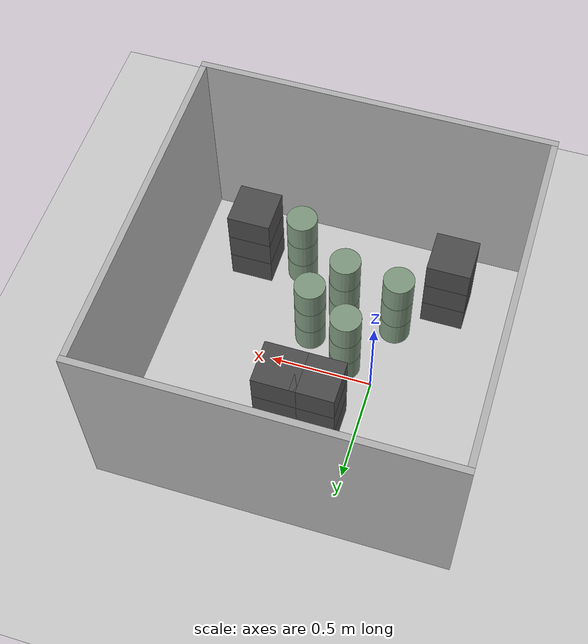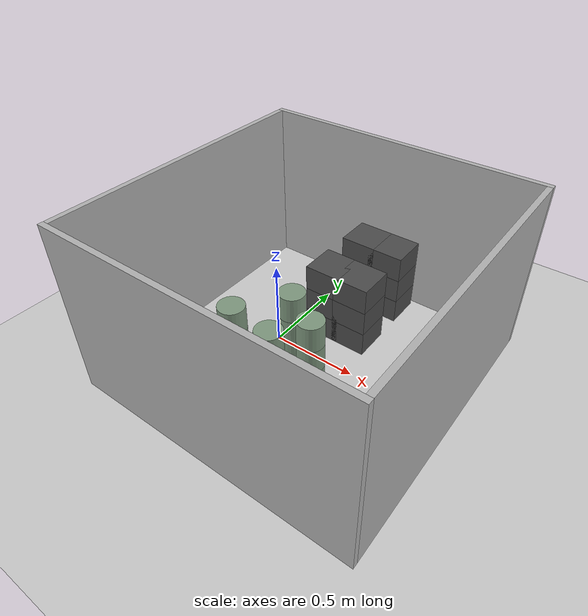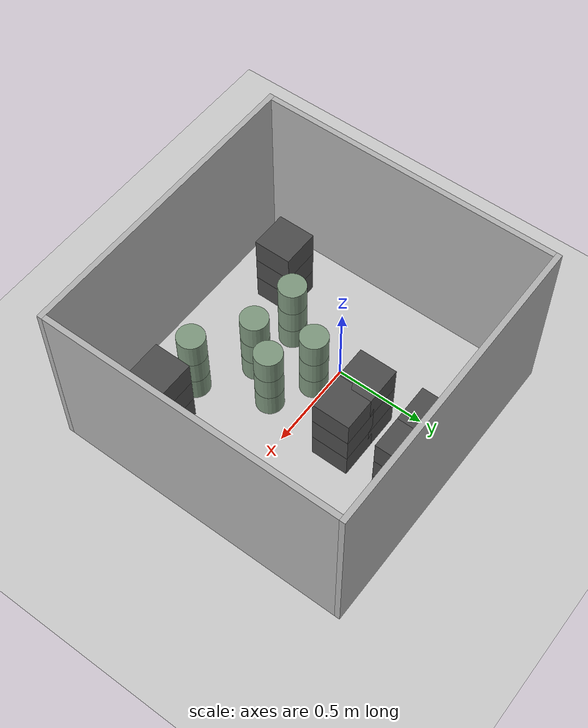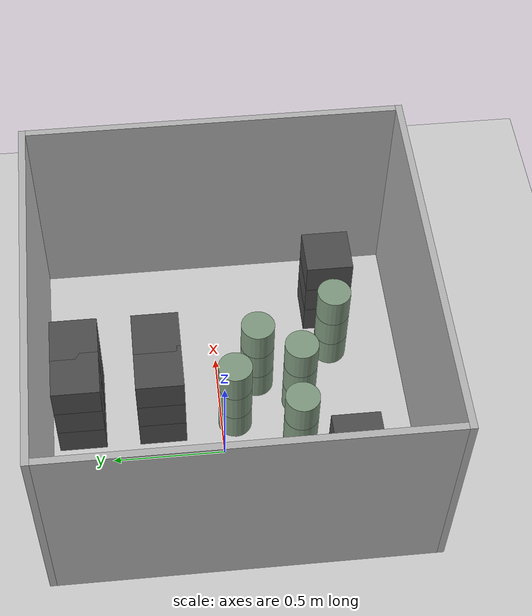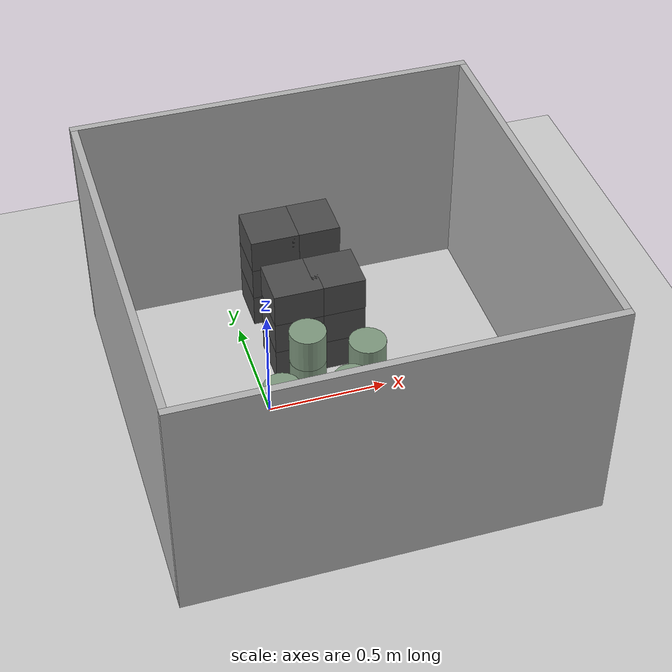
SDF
<sdf version="1.6">
 <world name="default">
  <plugin name="gazebo_occupancy_map" filename="libgazebo_2Dmap_plugin.so">
   <map_resolution>0.02</map_resolution>
   <map_height>0.3</map_height>
   <map_size_x>9</map_size_x>
   <map_size_y>9</map_size_y>
   <init_robot_x>0</init_robot_x>
   <init_robot_y>0</init_robot_y>
  </plugin>
  <light name="sun" type="directional">
   <cast_shadows>0</cast_shadows>
   <pose>0 0 10 0 -0 0</pose>
   <diffuse>0.8 0.8 0.8 1</diffuse>
   <specular>0.2 0.2 0.2 1</specular>
   <attenuation>
    <range>1000</range>
    <constant>0.9</constant>
    <linear>0.01</linear>
    <quadratic>0.001</quadratic>
   </attenuation>
   <direction>-0.5 0.1 -0.9</direction>
  </light>
  <include><uri>model://ground_plane</uri></include>
  <gravity>0 0 -9.8</gravity>
  <magnetic_field>6e-06 2.3e-05 -4.2e-05</magnetic_field>
  <atmosphere type="adiabatic"/>
  <physics name="default_physics" default="0" type="ode">
   <max_step_size>0.001</max_step_size>
   <real_time_factor>1</real_time_factor>
   <real_time_update_rate>1000</real_time_update_rate>
  </physics>
  <scene><ambient>0.4 0.4 0.4 1</ambient><background>0.7 0.7 0.7 1</background><shadows>0</shadows></scene>
  <spherical_coordinates>
   <surface_model>EARTH_WGS84</surface_model>
   <latitude_deg>0</latitude_deg>
   <longitude_deg>0</longitude_deg>
   <elevation>0</elevation>
   <heading_deg>0</heading_deg>
  </spherical_coordinates>
  <model name="wall_0">
   <pose frame="sim_world">-0.57 -0.045 0.5 0 0 0</pose>
   <static>True</static>
   <link name="wall_0_link">
    <inertial>
     <mass>100</mass>
     <inertia>
      <ixx>0.166667</ixx>
      <ixy>0</ixy>
      <ixz>0</ixz>
      <iyy>0.166667</iyy>
      <iyz>0</iyz>
      <izz>0.166667</izz>
     </inertia>
    </inertial>
    <collision name="wall_0_collision">
     <geometry><box><size>0.03 1.6199999999999999 1.0</size></box></geometry>
     <max_contacts>100</max_contacts>
    </collision>
    <visual name="wall_0_visual">
     <geometry><box><size>0.03 1.6199999999999999 1.0</size></box></geometry>
     <material><ambient>0.7 0.7 0.7 1</ambient><diffuse>0.7 0.7 0.7 1</diffuse></material>
    </visual>
   </link>
  </model>
  <model name="wall_1">
   <pose frame="sim_world">1.08 -0.045 0.5 0 0 0</pose>
   <static>True</static>
   <link name="wall_1_link">
    <inertial>
     <mass>100</mass>
     <inertia>
      <ixx>0.166667</ixx>
      <ixy>0</ixy>
      <ixz>0</ixz>
      <iyy>0.166667</iyy>
      <iyz>0</iyz>
      <izz>0.166667</izz>
     </inertia>
    </inertial>
    <collision name="wall_1_collision">
     <geometry><box><size>0.03 1.6199999999999999 1.0</size></box></geometry>
     <max_contacts>100</max_contacts>
    </collision>
    <visual name="wall_1_visual">
     <geometry><box><size>0.03 1.6199999999999999 1.0</size></box></geometry>
     <material><ambient>0.7 0.7 0.7 1</ambient><diffuse>0.7 0.7 0.7 1</diffuse></material>
    </visual>
   </link>
  </model>
  <model name="wall_2">
   <pose frame="sim_world">0.255 -0.87 0.5 0 0 0</pose>
   <static>True</static>
   <link name="wall_2_link">
    <inertial>
     <mass>100</mass>
     <inertia>
      <ixx>0.166667</ixx>
      <ixy>0</ixy>
      <ixz>0</ixz>
      <iyy>0.166667</iyy>
      <iyz>0</iyz>
      <izz>0.166667</izz>
     </inertia>
    </inertial>
    <collision name="wall_2_collision">
     <geometry><box><size>1.68 0.03 1.0</size></box></geometry>
     <max_contacts>100</max_contacts>
    </collision>
    <visual name="wall_2_visual">
     <geometry><box><size>1.68 0.03 1.0</size></box></geometry>
     <material><ambient>0.7 0.7 0.7 1</ambient><diffuse>0.7 0.7 0.7 1</diffuse></material>
    </visual>
   </link>
  </model>
  <model name="wall_3">
   <pose frame="sim_world">0.255 0.78 0.5 0 0 0</pose>
   <static>True</static>
   <link name="wall_3_link">
    <inertial>
     <mass>100</mass>
     <inertia>
      <ixx>0.166667</ixx>
      <ixy>0</ixy>
      <ixz>0</ixz>
      <iyy>0.166667</iyy>
      <iyz>0</iyz>
      <izz>0.166667</izz>
     </inertia>
    </inertial>
    <collision name="wall_3_collision">
     <geometry><box><size>1.68 0.03 1.0</size></box></geometry>
     <max_contacts>100</max_contacts>
    </collision>
    <visual name="wall_3_visual">
     <geometry><box><size>1.68 0.03 1.0</size></box></geometry>
     <material><ambient>0.7 0.7 0.7 1</ambient><diffuse>0.7 0.7 0.7 1</diffuse></material>
    </visual>
   </link>
  </model>
  <model name="box_0">
   <pose frame="sim_world">-0.24 -0.54 0.075 0 -0 0</pose>
   <static>True</static>
   <link name="box_0_link">
    <inertial>
     <mass>100</mass>
     <inertia>
      <ixx>0.166667</ixx>
      <ixy>0</ixy>
      <ixz>0</ixz>
      <iyy>0.166667</iyy>
      <iyz>0</iyz>
      <izz>0.166667</izz>
     </inertia>
    </inertial>
    <collision name="box_0_collision">
     <geometry><box><size>0.21 0.21 0.15</size></box></geometry>
     <max_contacts>100</max_contacts>
    </collision>
    <visual name="box_0_visual">
     <geometry><box><size>0.21 0.21 0.15</size></box></geometry>
     <material><ambient>0.3 0.3 0.3 1</ambient><diffuse>0.3 0.3 0.3 1</diffuse></material>
    </visual>
   </link>
  </model>
  <model name="box_1">
   <pose frame="sim_world">-0.24 -0.54 0.225 0 -0 0</pose>
   <static>True</static>
   <link name="box_1_link">
    <inertial>
     <mass>100</mass>
     <inertia>
      <ixx>0.166667</ixx>
      <ixy>0</ixy>
      <ixz>0</ixz>
      <iyy>0.166667</iyy>
      <iyz>0</iyz>
      <izz>0.166667</izz>
     </inertia>
    </inertial>
    <collision name="box_1_collision">
     <geometry><box><size>0.21 0.21 0.15</size></box></geometry>
     <max_contacts>100</max_contacts>
    </collision>
    <visual name="box_1_visual">
     <geometry><box><size>0.21 0.21 0.15</size></box></geometry>
     <material><ambient>0.3 0.3 0.3 1</ambient><diffuse>0.3 0.3 0.3 1</diffuse></material>
    </visual>
   </link>
  </model>
  <model name="box_2">
   <pose frame="sim_world">-0.24 -0.54 0.375 0 -0 0</pose>
   <static>True</static>
   <link name="box_2_link">
    <inertial>
     <mass>100</mass>
     <inertia>
      <ixx>0.166667</ixx>
      <ixy>0</ixy>
      <ixz>0</ixz>
      <iyy>0.166667</iyy>
      <iyz>0</iyz>
      <izz>0.166667</izz>
     </inertia>
    </inertial>
    <collision name="box_2_collision">
     <geometry><box><size>0.21 0.21 0.15</size></box></geometry>
     <max_contacts>100</max_contacts>
    </collision>
    <visual name="box_2_visual">
     <geometry><box><size>0.21 0.21 0.15</size></box></geometry>
     <material><ambient>0.3 0.3 0.3 1</ambient><diffuse>0.3 0.3 0.3 1</diffuse></material>
    </visual>
   </link>
  </model>
  <model name="box_3">
   <pose frame="sim_world">0.18 0.27 0.075 0 -0 0</pose>
   <static>True</static>
   <link name="box_3_link">
    <inertial>
     <mass>100</mass>
     <inertia>
      <ixx>0.166667</ixx>
      <ixy>0</ixy>
      <ixz>0</ixz>
      <iyy>0.166667</iyy>
      <iyz>0</iyz>
      <izz>0.166667</izz>
     </inertia>
    </inertial>
    <collision name="box_3_collision">
     <geometry><box><size>0.21 0.21 0.15</size></box></geometry>
     <max_contacts>100</max_contacts>
    </collision>
    <visual name="box_3_visual">
     <geometry><box><size>0.21 0.21 0.15</size></box></geometry>
     <material><ambient>0.3 0.3 0.3 1</ambient><diffuse>0.3 0.3 0.3 1</diffuse></material>
    </visual>
   </link>
  </model>
  <model name="box_4">
   <pose frame="sim_world">0.18 0.27 0.225 0 -0 0</pose>
   <static>True</static>
   <link name="box_4_link">
    <inertial>
     <mass>100</mass>
     <inertia>
      <ixx>0.166667</ixx>
      <ixy>0</ixy>
      <ixz>0</ixz>
      <iyy>0.166667</iyy>
      <iyz>0</iyz>
      <izz>0.166667</izz>
     </inertia>
    </inertial>
    <collision name="box_4_collision">
     <geometry><box><size>0.21 0.21 0.15</size></box></geometry>
     <max_contacts>100</max_contacts>
    </collision>
    <visual name="box_4_visual">
     <geometry><box><size>0.21 0.21 0.15</size></box></geometry>
     <material><ambient>0.3 0.3 0.3 1</ambient><diffuse>0.3 0.3 0.3 1</diffuse></material>
    </visual>
   </link>
  </model>
  <model name="box_5">
   <pose frame="sim_world">0.18 0.27 0.375 0 -0 0</pose>
   <static>True</static>
   <link name="box_5_link">
    <inertial>
     <mass>100</mass>
     <inertia>
      <ixx>0.166667</ixx>
      <ixy>0</ixy>
      <ixz>0</ixz>
      <iyy>0.166667</iyy>
      <iyz>0</iyz>
      <izz>0.166667</izz>
     </inertia>
    </inertial>
    <collision name="box_5_collision">
     <geometry><box><size>0.21 0.21 0.15</size></box></geometry>
     <max_contacts>100</max_contacts>
    </collision>
    <visual name="box_5_visual">
     <geometry><box><size>0.21 0.21 0.15</size></box></geometry>
     <material><ambient>0.3 0.3 0.3 1</ambient><diffuse>0.3 0.3 0.3 1</diffuse></material>
    </visual>
   </link>
  </model>
  <model name="box_6">
   <pose frame="sim_world">0.18 0.63 0.075 0 -0 0</pose>
   <static>True</static>
   <link name="box_6_link">
    <inertial>
     <mass>100</mass>
     <inertia>
      <ixx>0.166667</ixx>
      <ixy>0</ixy>
      <ixz>0</ixz>
      <iyy>0.166667</iyy>
      <iyz>0</iyz>
      <izz>0.166667</izz>
     </inertia>
    </inertial>
    <collision name="box_6_collision">
     <geometry><box><size>0.21 0.21 0.15</size></box></geometry>
     <max_contacts>100</max_contacts>
    </collision>
    <visual name="box_6_visual">
     <geometry><box><size>0.21 0.21 0.15</size></box></geometry>
     <material><ambient>0.3 0.3 0.3 1</ambient><diffuse>0.3 0.3 0.3 1</diffuse></material>
    </visual>
   </link>
  </model>
  <model name="box_7">
   <pose frame="sim_world">0.18 0.63 0.225 0 -0 0</pose>
   <static>True</static>
   <link name="box_7_link">
    <inertial>
     <mass>100</mass>
     <inertia>
      <ixx>0.166667</ixx>
      <ixy>0</ixy>
      <ixz>0</ixz>
      <iyy>0.166667</iyy>
      <iyz>0</iyz>
      <izz>0.166667</izz>
     </inertia>
    </inertial>
    <collision name="box_7_collision">
     <geometry><box><size>0.21 0.21 0.15</size></box></geometry>
     <max_contacts>100</max_contacts>
    </collision>
    <visual name="box_7_visual">
     <geometry><box><size>0.21 0.21 0.15</size></box></geometry>
     <material><ambient>0.3 0.3 0.3 1</ambient><diffuse>0.3 0.3 0.3 1</diffuse></material>
    </visual>
   </link>
  </model>
  <model name="box_8">
   <pose frame="sim_world">0.18 0.63 0.375 0 -0 0</pose>
   <static>True</static>
   <link name="box_8_link">
    <inertial>
     <mass>100</mass>
     <inertia>
      <ixx>0.166667</ixx>
      <ixy>0</ixy>
      <ixz>0</ixz>
      <iyy>0.166667</iyy>
      <iyz>0</iyz>
      <izz>0.166667</izz>
     </inertia>
    </inertial>
    <collision name="box_8_collision">
     <geometry><box><size>0.21 0.21 0.15</size></box></geometry>
     <max_contacts>100</max_contacts>
    </collision>
    <visual name="box_8_visual">
     <geometry><box><size>0.21 0.21 0.15</size></box></geometry>
     <material><ambient>0.3 0.3 0.3 1</ambient><diffuse>0.3 0.3 0.3 1</diffuse></material>
    </visual>
   </link>
  </model>
  <model name="box_9">
   <pose frame="sim_world">0.36 0.27 0.075 0 -0 0</pose>
   <static>True</static>
   <link name="box_9_link">
    <inertial>
     <mass>100</mass>
     <inertia>
      <ixx>0.166667</ixx>
      <ixy>0</ixy>
      <ixz>0</ixz>
      <iyy>0.166667</iyy>
      <iyz>0</iyz>
      <izz>0.166667</izz>
     </inertia>
    </inertial>
    <collision name="box_9_collision">
     <geometry><box><size>0.21 0.21 0.15</size></box></geometry>
     <max_contacts>100</max_contacts>
    </collision>
    <visual name="box_9_visual">
     <geometry><box><size>0.21 0.21 0.15</size></box></geometry>
     <material><ambient>0.3 0.3 0.3 1</ambient><diffuse>0.3 0.3 0.3 1</diffuse></material>
    </visual>
   </link>
  </model>
  <model name="box_10">
   <pose frame="sim_world">0.36 0.27 0.225 0 -0 0</pose>
   <static>True</static>
   <link name="box_10_link">
    <inertial>
     <mass>100</mass>
     <inertia>
      <ixx>0.166667</ixx>
      <ixy>0</ixy>
      <ixz>0</ixz>
      <iyy>0.166667</iyy>
      <iyz>0</iyz>
      <izz>0.166667</izz>
     </inertia>
    </inertial>
    <collision name="box_10_collision">
     <geometry><box><size>0.21 0.21 0.15</size></box></geometry>
     <max_contacts>100</max_contacts>
    </collision>
    <visual name="box_10_visual">
     <geometry><box><size>0.21 0.21 0.15</size></box></geometry>
     <material><ambient>0.3 0.3 0.3 1</ambient><diffuse>0.3 0.3 0.3 1</diffuse></material>
    </visual>
   </link>
  </model>
  <model name="box_11">
   <pose frame="sim_world">0.36 0.27 0.375 0 -0 0</pose>
   <static>True</static>
   <link name="box_11_link">
    <inertial>
     <mass>100</mass>
     <inertia>
      <ixx>0.166667</ixx>
      <ixy>0</ixy>
      <ixz>0</ixz>
      <iyy>0.166667</iyy>
      <iyz>0</iyz>
      <izz>0.166667</izz>
     </inertia>
    </inertial>
    <collision name="box_11_collision">
     <geometry><box><size>0.21 0.21 0.15</size></box></geometry>
     <max_contacts>100</max_contacts>
    </collision>
    <visual name="box_11_visual">
     <geometry><box><size>0.21 0.21 0.15</size></box></geometry>
     <material><ambient>0.3 0.3 0.3 1</ambient><diffuse>0.3 0.3 0.3 1</diffuse></material>
    </visual>
   </link>
  </model>
  <model name="box_12">
   <pose frame="sim_world">0.36 0.63 0.075 0 -0 0</pose>
   <static>True</static>
   <link name="box_12_link">
    <inertial>
     <mass>100</mass>
     <inertia>
      <ixx>0.166667</ixx>
      <ixy>0</ixy>
      <ixz>0</ixz>
      <iyy>0.166667</iyy>
      <iyz>0</iyz>
      <izz>0.166667</izz>
     </inertia>
    </inertial>
    <collision name="box_12_collision">
     <geometry><box><size>0.21 0.21 0.15</size></box></geometry>
     <max_contacts>100</max_contacts>
    </collision>
    <visual name="box_12_visual">
     <geometry><box><size>0.21 0.21 0.15</size></box></geometry>
     <material><ambient>0.3 0.3 0.3 1</ambient><diffuse>0.3 0.3 0.3 1</diffuse></material>
    </visual>
   </link>
  </model>
  <model name="box_13">
   <pose frame="sim_world">0.36 0.63 0.225 0 -0 0</pose>
   <static>True</static>
   <link name="box_13_link">
    <inertial>
     <mass>100</mass>
     <inertia>
      <ixx>0.166667</ixx>
      <ixy>0</ixy>
      <ixz>0</ixz>
      <iyy>0.166667</iyy>
      <iyz>0</iyz>
      <izz>0.166667</izz>
     </inertia>
    </inertial>
    <collision name="box_13_collision">
     <geometry><box><size>0.21 0.21 0.15</size></box></geometry>
     <max_contacts>100</max_contacts>
    </collision>
    <visual name="box_13_visual">
     <geometry><box><size>0.21 0.21 0.15</size></box></geometry>
     <material><ambient>0.3 0.3 0.3 1</ambient><diffuse>0.3 0.3 0.3 1</diffuse></material>
    </visual>
   </link>
  </model>
  <model name="box_14">
   <pose frame="sim_world">0.36 0.63 0.375 0 -0 0</pose>
   <static>True</static>
   <link name="box_14_link">
    <inertial>
     <mass>100</mass>
     <inertia>
      <ixx>0.166667</ixx>
      <ixy>0</ixy>
      <ixz>0</ixz>
      <iyy>0.166667</iyy>
      <iyz>0</iyz>
      <izz>0.166667</izz>
     </inertia>
    </inertial>
    <collision name="box_14_collision">
     <geometry><box><size>0.21 0.21 0.15</size></box></geometry>
     <max_contacts>100</max_contacts>
    </collision>
    <visual name="box_14_visual">
     <geometry><box><size>0.21 0.21 0.15</size></box></geometry>
     <material><ambient>0.3 0.3 0.3 1</ambient><diffuse>0.3 0.3 0.3 1</diffuse></material>
    </visual>
   </link>
  </model>
  <model name="box_15">
   <pose frame="sim_world">0.75 -0.54 0.075 0 -0 0</pose>
   <static>True</static>
   <link name="box_15_link">
    <inertial>
     <mass>100</mass>
     <inertia>
      <ixx>0.166667</ixx>
      <ixy>0</ixy>
      <ixz>0</ixz>
      <iyy>0.166667</iyy>
      <iyz>0</iyz>
      <izz>0.166667</izz>
     </inertia>
    </inertial>
    <collision name="box_15_collision">
     <geometry><box><size>0.21 0.21 0.15</size></box></geometry>
     <max_contacts>100</max_contacts>
    </collision>
    <visual name="box_15_visual">
     <geometry><box><size>0.21 0.21 0.15</size></box></geometry>
     <material><ambient>0.3 0.3 0.3 1</ambient><diffuse>0.3 0.3 0.3 1</diffuse></material>
    </visual>
   </link>
  </model>
  <model name="box_16">
   <pose frame="sim_world">0.75 -0.54 0.225 0 -0 0</pose>
   <static>True</static>
   <link name="box_16_link">
    <inertial>
     <mass>100</mass>
     <inertia>
      <ixx>0.166667</ixx>
      <ixy>0</ixy>
      <ixz>0</ixz>
      <iyy>0.166667</iyy>
      <iyz>0</iyz>
      <izz>0.166667</izz>
     </inertia>
    </inertial>
    <collision name="box_16_collision">
     <geometry><box><size>0.21 0.21 0.15</size></box></geometry>
     <max_contacts>100</max_contacts>
    </collision>
    <visual name="box_16_visual">
     <geometry><box><size>0.21 0.21 0.15</size></box></geometry>
     <material><ambient>0.3 0.3 0.3 1</ambient><diffuse>0.3 0.3 0.3 1</diffuse></material>
    </visual>
   </link>
  </model>
  <model name="box_17">
   <pose frame="sim_world">0.75 -0.54 0.375 0 -0 0</pose>
   <static>True</static>
   <link name="box_17_link">
    <inertial>
     <mass>100</mass>
     <inertia>
      <ixx>0.166667</ixx>
      <ixy>0</ixy>
      <ixz>0</ixz>
      <iyy>0.166667</iyy>
      <iyz>0</iyz>
      <izz>0.166667</izz>
     </inertia>
    </inertial>
    <collision name="box_17_collision">
     <geometry><box><size>0.21 0.21 0.15</size></box></geometry>
     <max_contacts>100</max_contacts>
    </collision>
    <visual name="box_17_visual">
     <geometry><box><size>0.21 0.21 0.15</size></box></geometry>
     <material><ambient>0.3 0.3 0.3 1</ambient><diffuse>0.3 0.3 0.3 1</diffuse></material>
    </visual>
   </link>
  </model>
  <model name="cylinder_0">
   <pose frame="sim_world">-0.03 -0.33 0.075 0 -0 0</pose>
   <static>True</static>
   <link name="cylinder_0_link">
    <inertial>
     <mass>100</mass>
     <inertia><ixx>0.145833</ixx><ixy>0</ixy><ixz>0</ixz><iyy>0.145833</iyy><iyz>0</iyz><izz>0.125</izz></inertia>
    </inertial>
    <collision name="cylinder_0_collision">
     <geometry><cylinder><length>0.15</length><radius>0.075</radius></cylinder></geometry>
     <max_contacts>100</max_contacts>
    </collision>
    <visual name="cylinder_0_visual">
     <geometry><cylinder><length>0.15</length><radius>0.075</radius></cylinder></geometry>
     <material><ambient>0.5 0.6 0.5 1</ambient><diffuse>0.5 0.6 0.5 1</diffuse></material>
    </visual>
   </link>
  </model>
  <model name="cylinder_1">
   <pose frame="sim_world">-0.03 -0.33 0.225 0 -0 0</pose>
   <static>True</static>
   <link name="cylinder_1_link">
    <inertial>
     <mass>100</mass>
     <inertia><ixx>0.145833</ixx><ixy>0</ixy><ixz>0</ixz><iyy>0.145833</iyy><iyz>0</iyz><izz>0.125</izz></inertia>
    </inertial>
    <collision name="cylinder_1_collision">
     <geometry><cylinder><length>0.15</length><radius>0.075</radius></cylinder></geometry>
     <max_contacts>100</max_contacts>
    </collision>
    <visual name="cylinder_1_visual">
     <geometry><cylinder><length>0.15</length><radius>0.075</radius></cylinder></geometry>
     <material><ambient>0.5 0.6 0.5 1</ambient><diffuse>0.5 0.6 0.5 1</diffuse></material>
    </visual>
   </link>
  </model>
  <model name="cylinder_2">
   <pose frame="sim_world">-0.03 -0.33 0.375 0 -0 0</pose>
   <static>True</static>
   <link name="cylinder_2_link">
    <inertial>
     <mass>100</mass>
     <inertia><ixx>0.145833</ixx><ixy>0</ixy><ixz>0</ixz><iyy>0.145833</iyy><iyz>0</iyz><izz>0.125</izz></inertia>
    </inertial>
    <collision name="cylinder_2_collision">
     <geometry><cylinder><length>0.15</length><radius>0.075</radius></cylinder></geometry>
     <max_contacts>100</max_contacts>
    </collision>
    <visual name="cylinder_2_visual">
     <geometry><cylinder><length>0.15</length><radius>0.075</radius></cylinder></geometry>
     <material><ambient>0.5 0.6 0.5 1</ambient><diffuse>0.5 0.6 0.5 1</diffuse></material>
    </visual>
   </link>
  </model>
  <model name="cylinder_3">
   <pose frame="sim_world">0.15 -0.06 0.075 0 -0 0</pose>
   <static>True</static>
   <link name="cylinder_3_link">
    <inertial>
     <mass>100</mass>
     <inertia><ixx>0.145833</ixx><ixy>0</ixy><ixz>0</ixz><iyy>0.145833</iyy><iyz>0</iyz><izz>0.125</izz></inertia>
    </inertial>
    <collision name="cylinder_3_collision">
     <geometry><cylinder><length>0.15</length><radius>0.075</radius></cylinder></geometry>
     <max_contacts>100</max_contacts>
    </collision>
    <visual name="cylinder_3_visual">
     <geometry><cylinder><length>0.15</length><radius>0.075</radius></cylinder></geometry>
     <material><ambient>0.5 0.6 0.5 1</ambient><diffuse>0.5 0.6 0.5 1</diffuse></material>
    </visual>
   </link>
  </model>
  <model name="cylinder_4">
   <pose frame="sim_world">0.15 -0.06 0.225 0 -0 0</pose>
   <static>True</static>
   <link name="cylinder_4_link">
    <inertial>
     <mass>100</mass>
     <inertia><ixx>0.145833</ixx><ixy>0</ixy><ixz>0</ixz><iyy>0.145833</iyy><iyz>0</iyz><izz>0.125</izz></inertia>
    </inertial>
    <collision name="cylinder_4_collision">
     <geometry><cylinder><length>0.15</length><radius>0.075</radius></cylinder></geometry>
     <max_contacts>100</max_contacts>
    </collision>
    <visual name="cylinder_4_visual">
     <geometry><cylinder><length>0.15</length><radius>0.075</radius></cylinder></geometry>
     <material><ambient>0.5 0.6 0.5 1</ambient><diffuse>0.5 0.6 0.5 1</diffuse></material>
    </visual>
   </link>
  </model>
  <model name="cylinder_5">
   <pose frame="sim_world">0.15 -0.06 0.375 0 -0 0</pose>
   <static>True</static>
   <link name="cylinder_5_link">
    <inertial>
     <mass>100</mass>
     <inertia><ixx>0.145833</ixx><ixy>0</ixy><ixz>0</ixz><iyy>0.145833</iyy><iyz>0</iyz><izz>0.125</izz></inertia>
    </inertial>
    <collision name="cylinder_5_collision">
     <geometry><cylinder><length>0.15</length><radius>0.075</radius></cylinder></geometry>
     <max_contacts>100</max_contacts>
    </collision>
    <visual name="cylinder_5_visual">
     <geometry><cylinder><length>0.15</length><radius>0.075</radius></cylinder></geometry>
     <material><ambient>0.5 0.6 0.5 1</ambient><diffuse>0.5 0.6 0.5 1</diffuse></material>
    </visual>
   </link>
  </model>
  <model name="cylinder_6">
   <pose frame="sim_world">0.24 -0.36 0.075 0 -0 0</pose>
   <static>True</static>
   <link name="cylinder_6_link">
    <inertial>
     <mass>100</mass>
     <inertia><ixx>0.145833</ixx><ixy>0</ixy><ixz>0</ixz><iyy>0.145833</iyy><iyz>0</iyz><izz>0.125</izz></inertia>
    </inertial>
    <collision name="cylinder_6_collision">
     <geometry><cylinder><length>0.15</length><radius>0.075</radius></cylinder></geometry>
     <max_contacts>100</max_contacts>
    </collision>
    <visual name="cylinder_6_visual">
     <geometry><cylinder><length>0.15</length><radius>0.075</radius></cylinder></geometry>
     <material><ambient>0.5 0.6 0.5 1</ambient><diffuse>0.5 0.6 0.5 1</diffuse></material>
    </visual>
   </link>
  </model>
  <model name="cylinder_7">
   <pose frame="sim_world">0.24 -0.36 0.225 0 -0 0</pose>
   <static>True</static>
   <link name="cylinder_7_link">
    <inertial>
     <mass>100</mass>
     <inertia><ixx>0.145833</ixx><ixy>0</ixy><ixz>0</ixz><iyy>0.145833</iyy><iyz>0</iyz><izz>0.125</izz></inertia>
    </inertial>
    <collision name="cylinder_7_collision">
     <geometry><cylinder><length>0.15</length><radius>0.075</radius></cylinder></geometry>
     <max_contacts>100</max_contacts>
    </collision>
    <visual name="cylinder_7_visual">
     <geometry><cylinder><length>0.15</length><radius>0.075</radius></cylinder></geometry>
     <material><ambient>0.5 0.6 0.5 1</ambient><diffuse>0.5 0.6 0.5 1</diffuse></material>
    </visual>
   </link>
  </model>
  <model name="cylinder_8">
   <pose frame="sim_world">0.24 -0.36 0.375 0 -0 0</pose>
   <static>True</static>
   <link name="cylinder_8_link">
    <inertial>
     <mass>100</mass>
     <inertia><ixx>0.145833</ixx><ixy>0</ixy><ixz>0</ixz><iyy>0.145833</iyy><iyz>0</iyz><izz>0.125</izz></inertia>
    </inertial>
    <collision name="cylinder_8_collision">
     <geometry><cylinder><length>0.15</length><radius>0.075</radius></cylinder></geometry>
     <max_contacts>100</max_contacts>
    </collision>
    <visual name="cylinder_8_visual">
     <geometry><cylinder><length>0.15</length><radius>0.075</radius></cylinder></geometry>
     <material><ambient>0.5 0.6 0.5 1</ambient><diffuse>0.5 0.6 0.5 1</diffuse></material>
    </visual>
   </link>
  </model>
  <model name="cylinder_9">
   <pose frame="sim_world">0.36 -0.18 0.075 0 -0 0</pose>
   <static>True</static>
   <link name="cylinder_9_link">
    <inertial>
     <mass>100</mass>
     <inertia><ixx>0.145833</ixx><ixy>0</ixy><ixz>0</ixz><iyy>0.145833</iyy><iyz>0</iyz><izz>0.125</izz></inertia>
    </inertial>
    <collision name="cylinder_9_collision">
     <geometry><cylinder><length>0.15</length><radius>0.075</radius></cylinder></geometry>
     <max_contacts>100</max_contacts>
    </collision>
    <visual name="cylinder_9_visual">
     <geometry><cylinder><length>0.15</length><radius>0.075</radius></cylinder></geometry>
     <material><ambient>0.5 0.6 0.5 1</ambient><diffuse>0.5 0.6 0.5 1</diffuse></material>
    </visual>
   </link>
  </model>
  <model name="cylinder_10">
   <pose frame="sim_world">0.36 -0.18 0.225 0 -0 0</pose>
   <static>True</static>
   <link name="cylinder_10_link">
    <inertial>
     <mass>100</mass>
     <inertia><ixx>0.145833</ixx><ixy>0</ixy><ixz>0</ixz><iyy>0.145833</iyy><iyz>0</iyz><izz>0.125</izz></inertia>
    </inertial>
    <collision name="cylinder_10_collision">
     <geometry><cylinder><length>0.15</length><radius>0.075</radius></cylinder></geometry>
     <max_contacts>100</max_contacts>
    </collision>
    <visual name="cylinder_10_visual">
     <geometry><cylinder><length>0.15</length><radius>0.075</radius></cylinder></geometry>
     <material><ambient>0.5 0.6 0.5 1</ambient><diffuse>0.5 0.6 0.5 1</diffuse></material>
    </visual>
   </link>
  </model>
  <model name="cylinder_11">
   <pose frame="sim_world">0.36 -0.18 0.375 0 -0 0</pose>
   <static>True</static>
   <link name="cylinder_11_link">
    <inertial>
     <mass>100</mass>
     <inertia><ixx>0.145833</ixx><ixy>0</ixy><ixz>0</ixz><iyy>0.145833</iyy><iyz>0</iyz><izz>0.125</izz></inertia>
    </inertial>
    <collision name="cylinder_11_collision">
     <geometry><cylinder><length>0.15</length><radius>0.075</radius></cylinder></geometry>
     <max_contacts>100</max_contacts>
    </collision>
    <visual name="cylinder_11_visual">
     <geometry><cylinder><length>0.15</length><radius>0.075</radius></cylinder></geometry>
     <material><ambient>0.5 0.6 0.5 1</ambient><diffuse>0.5 0.6 0.5 1</diffuse></material>
    </visual>
   </link>
  </model>
  <model name="cylinder_12">
   <pose frame="sim_world">0.51 -0.54 0.075 0 -0 0</pose>
   <static>True</static>
   <link name="cylinder_12_link">
    <inertial>
     <mass>100</mass>
     <inertia><ixx>0.145833</ixx><ixy>0</ixy><ixz>0</ixz><iyy>0.145833</iyy><iyz>0</iyz><izz>0.125</izz></inertia>
    </inertial>
    <collision name="cylinder_12_collision">
     <geometry><cylinder><length>0.15</length><radius>0.075</radius></cylinder></geometry>
     <max_contacts>100</max_contacts>
    </collision>
    <visual name="cylinder_12_visual">
     <geometry><cylinder><length>0.15</length><radius>0.075</radius></cylinder></geometry>
     <material><ambient>0.5 0.6 0.5 1</ambient><diffuse>0.5 0.6 0.5 1</diffuse></material>
    </visual>
   </link>
  </model>
  <model name="cylinder_13">
   <pose frame="sim_world">0.51 -0.54 0.225 0 -0 0</pose>
   <static>True</static>
   <link name="cylinder_13_link">
    <inertial>
     <mass>100</mass>
     <inertia><ixx>0.145833</ixx><ixy>0</ixy><ixz>0</ixz><iyy>0.145833</iyy><iyz>0</iyz><izz>0.125</izz></inertia>
    </inertial>
    <collision name="cylinder_13_collision">
     <geometry><cylinder><length>0.15</length><radius>0.075</radius></cylinder></geometry>
     <max_contacts>100</max_contacts>
    </collision>
    <visual name="cylinder_13_visual">
     <geometry><cylinder><length>0.15</length><radius>0.075</radius></cylinder></geometry>
     <material><ambient>0.5 0.6 0.5 1</ambient><diffuse>0.5 0.6 0.5 1</diffuse></material>
    </visual>
   </link>
  </model>
  <model name="cylinder_14">
   <pose frame="sim_world">0.51 -0.54 0.375 0 -0 0</pose>
   <static>True</static>
   <link name="cylinder_14_link">
    <inertial>
     <mass>100</mass>
     <inertia><ixx>0.145833</ixx><ixy>0</ixy><ixz>0</ixz><iyy>0.145833</iyy><iyz>0</iyz><izz>0.125</izz></inertia>
    </inertial>
    <collision name="cylinder_14_collision">
     <geometry><cylinder><length>0.15</length><radius>0.075</radius></cylinder></geometry>
     <max_contacts>100</max_contacts>
    </collision>
    <visual name="cylinder_14_visual">
     <geometry><cylinder><length>0.15</length><radius>0.075</radius></cylinder></geometry>
     <material><ambient>0.5 0.6 0.5 1</ambient><diffuse>0.5 0.6 0.5 1</diffuse></material>
    </visual>
   </link>
  </model>
  <include><uri>model://ground_plane</uri></include>
  <model name="ground_plane"><link name="ground_plane"/></model>
 </world>
</sdf>
